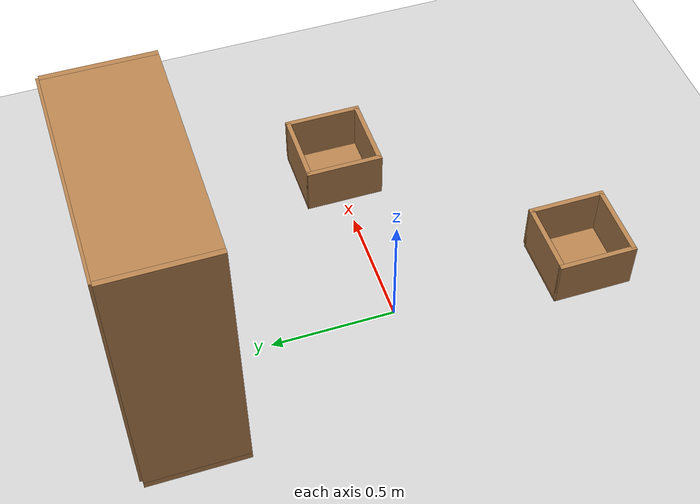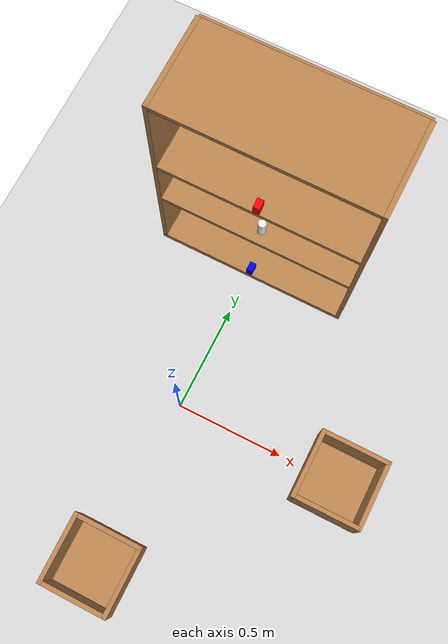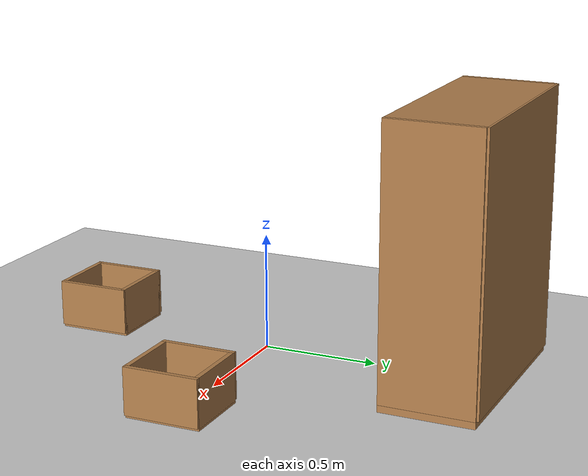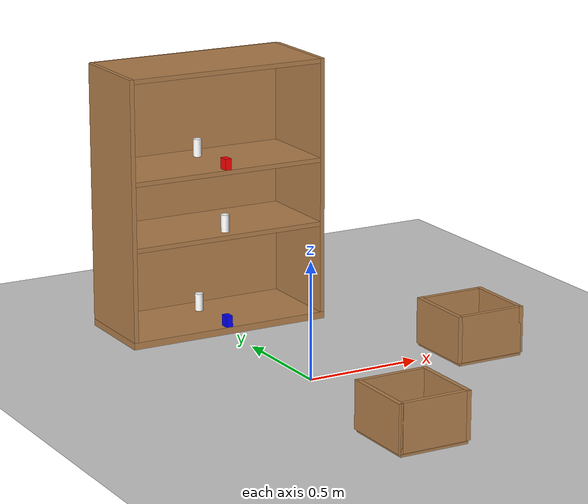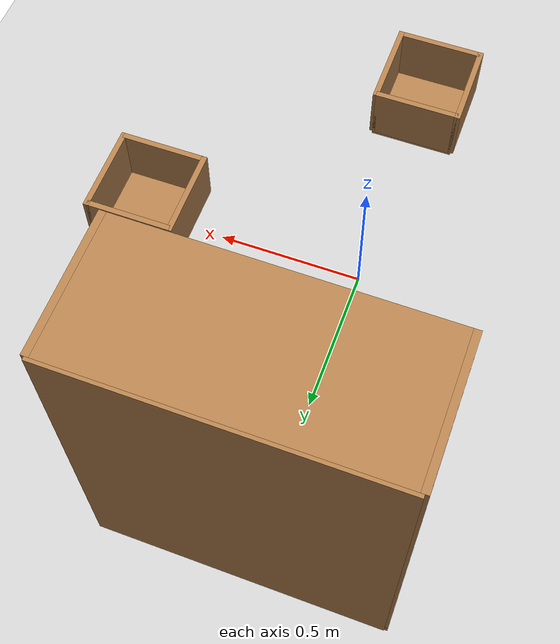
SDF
<sdf version="1.7">
 <world name="default">
  <light name="sun" type="directional">
   <pose>0 0 10 0 -0 0</pose>
   <diffuse>0.8 0.8 0.8 1</diffuse>
   <specular>0.2 0.2 0.2 1</specular>
   <attenuation>
    <range>1000</range>
    <constant>0.9</constant>
    <linear>0.01</linear>
    <quadratic>0.001</quadratic>
   </attenuation>
   <direction>-0.5 0.1 -0.9</direction>
   <spot><inner_angle>0</inner_angle><outer_angle>0</outer_angle><falloff>0</falloff></spot>
  </light>
  <model name="ground_plane">
   <static>1</static>
   <link name="link">
    <collision name="collision">
     <geometry><plane><normal>0 0 1</normal><size>100 100</size></plane></geometry>
     <surface>
      <contact><collide_bitmask>65535</collide_bitmask></contact>
      <friction><ode><mu>100</mu><mu2>50</mu2></ode></friction>
     </surface>
    </collision>
    <visual name="visual">
     <cast_shadows>0</cast_shadows>
     <geometry><plane><normal>0 0 1</normal><size>100 100</size></plane></geometry>
     <material>
      <script><uri>file://media/materials/scripts/gazebo.material</uri><name>Gazebo/Grey</name></script>
     </material>
    </visual>
   </link>
  </model>
  <gravity>0 0 -9.8</gravity>
  <magnetic_field>6e-06 2.3e-05 -4.2e-05</magnetic_field>
  <atmosphere type="adiabatic"/>
  <physics type="ode">
   <max_step_size>0.001</max_step_size>
   <real_time_factor>1</real_time_factor>
   <real_time_update_rate>1000</real_time_update_rate>
  </physics>
  <scene><ambient>0.4 0.4 0.4 1</ambient><background>0.7 0.7 0.7 1</background><shadows>1</shadows></scene>
  <spherical_coordinates>
   <surface_model>EARTH_WGS84</surface_model>
   <latitude_deg>0</latitude_deg>
   <longitude_deg>0</longitude_deg>
   <elevation>0</elevation>
   <heading_deg>0</heading_deg>
  </spherical_coordinates>
  <model name="unit_box_4_1_clone_clone">
   <link name="link">
    <inertial>
     <mass>1</mass>
     <inertia>
      <ixx>0.166667</ixx>
      <ixy>0</ixy>
      <ixz>0</ixz>
      <iyy>0.166667</iyy>
      <iyz>0</iyz>
      <izz>0.166667</izz>
     </inertia>
    </inertial>
    <visual name="visual">
     <geometry><box><size>0.029075 0.043546 0.049099</size></box></geometry>
     <material>
      <script><name>Gazebo/Grey</name><uri>file://media/materials/scripts/gazebo.material</uri></script>
      <shader type="pixel"><normal_map>__default__</normal_map></shader>
      <ambient>0 0 1 1</ambient>
      <diffuse>0.7 0.7 0.7 1</diffuse>
      <specular>0.01 0.01 0.01 1</specular>
      <emissive>0 0 0 1</emissive>
     </material>
    </visual>
    <collision name="collision">
     <geometry><box><size>0.029075 0.043546 0.049099</size></box></geometry>
     <surface>
      <friction>
       <ode><mu>3</mu><mu2>3</mu2><fdir1>0 0 0</fdir1><slip1>0</slip1><slip2>0</slip2></ode>
       <torsional>
        <coefficient>1</coefficient>
        <patch_radius>0</patch_radius>
        <surface_radius>0</surface_radius>
        <use_patch_radius>1</use_patch_radius>
        <ode><slip>0</slip></ode>
       </torsional>
      </friction>
      <bounce><restitution_coefficient>0</restitution_coefficient><threshold>9e+13</threshold></bounce>
      <contact>
       <collide_without_contact>0</collide_without_contact>
       <collide_without_contact_bitmask>1</collide_without_contact_bitmask>
       <collide_bitmask>1</collide_bitmask>
       <ode>
        <soft_cfm>0</soft_cfm>
        <soft_erp>0.2</soft_erp>
        <kp>1e+13</kp>
        <kd>1</kd>
        <max_vel>0.01</max_vel>
        <min_depth>0</min_depth>
       </ode>
       <bullet>
        <split_impulse>1</split_impulse>
        <split_impulse_penetration_threshold>-0.01</split_impulse_penetration_threshold>
        <soft_cfm>0</soft_cfm>
        <soft_erp>0.2</soft_erp>
        <kp>1e+13</kp>
        <kd>1</kd>
       </bullet>
      </contact>
     </surface>
    </collision>
   </link>
   <static>0</static>
   <pose>-0.000511 0.717872 0.054302 3.14159 6e-06 3.13516</pose>
  </model>
  <model name="bookshelf_2_clone_0">
   <link name="link">
    <inertial>
     <mass>1</mass>
     <inertia><ixx>1</ixx><ixy>0</ixy><ixz>0</ixz><iyy>1</iyy><iyz>0</iyz><izz>1</izz></inertia>
    </inertial>
    <pose>0 -0 0.024943 0 -0 0</pose>
    <visual name="visual5">
     <pose>0 -0.0975 0.35 0 -0 0</pose>
     <geometry><box><size>0.3 0.2 0.02</size></box></geometry>
     <material>
      <script><uri>file://media/materials/scripts/gazebo.material</uri><name>Gazebo/Wood</name></script>
      <shader type="pixel"><normal_map>__default__</normal_map></shader>
      <ambient>0 0 1 0</ambient>
      <diffuse>1 1 1 1</diffuse>
      <specular>0.2 0.2 0.2 1</specular>
      <emissive>0 0 0 1</emissive>
     </material>
    </visual>
    <visual name="visual4">
     <pose>0 -0.0975 0.05 0 -0 0</pose>
     <geometry><box><size>0.3 0.2 0.02</size></box></geometry>
     <material>
      <script><uri>file://media/materials/scripts/gazebo.material</uri><name>Gazebo/Wood</name></script>
      <shader type="pixel"><normal_map>__default__</normal_map></shader>
      <ambient>0 0 1 0</ambient>
      <diffuse>1 1 1 1</diffuse>
      <specular>0.2 0.2 0.2 1</specular>
      <emissive>0 0 0 1</emissive>
     </material>
    </visual>
    <visual name="visual3">
     <pose>-0.15 -0.0975 0.2 0 -0 0</pose>
     <geometry><box><size>0.02 0.2 0.32</size></box></geometry>
     <material>
      <script><uri>file://media/materials/scripts/gazebo.material</uri><name>Gazebo/Wood</name></script>
      <shader type="pixel"><normal_map>__default__</normal_map></shader>
      <ambient>0 0 1 0</ambient>
      <diffuse>1 1 1 1</diffuse>
      <specular>0.2 0.2 0.2 1</specular>
      <emissive>0 0 0 1</emissive>
     </material>
    </visual>
    <visual name="visual2">
     <pose>0.15 -0.0975 0.2 0 -0 0</pose>
     <geometry><box><size>0.02 0.2 0.32</size></box></geometry>
     <material>
      <script><uri>file://media/materials/scripts/gazebo.material</uri><name>Gazebo/Wood</name></script>
      <shader type="pixel"><normal_map>__default__</normal_map></shader>
      <ambient>0 0 1 0</ambient>
      <diffuse>1 1 1 1</diffuse>
      <specular>0.2 0.2 0.2 1</specular>
      <emissive>0 0 0 1</emissive>
     </material>
    </visual>
    <visual name="visual1">
     <pose>0 0.01 0.2 0 -0 0</pose>
     <geometry><box><size>0.3 0.01 0.32</size></box></geometry>
     <material>
      <script><uri>file://media/materials/scripts/gazebo.material</uri><name>Gazebo/Wood</name></script>
      <shader type="pixel"><normal_map>__default__</normal_map></shader>
      <ambient>1 1 1 1</ambient>
      <diffuse>1 1 1 1</diffuse>
      <specular>0.2 0.2 0.2 1</specular>
      <emissive>0 0 0 1</emissive>
     </material>
    </visual>
    <collision name="back">
     <pose>0 0.01 0.2 0 -0 0</pose>
     <geometry><box><size>0.3 0.01 0.32</size></box></geometry>
     <surface>
      <friction>
       <ode><mu>1</mu><mu2>1</mu2><fdir1>0 0 0</fdir1><slip1>0</slip1><slip2>0</slip2></ode>
       <torsional>
        <coefficient>1</coefficient>
        <patch_radius>0</patch_radius>
        <surface_radius>0</surface_radius>
        <use_patch_radius>1</use_patch_radius>
        <ode><slip>0</slip></ode>
       </torsional>
      </friction>
      <bounce><restitution_coefficient>0</restitution_coefficient><threshold>1e+06</threshold></bounce>
      <contact>
       <collide_without_contact>0</collide_without_contact>
       <collide_without_contact_bitmask>1</collide_without_contact_bitmask>
       <collide_bitmask>1</collide_bitmask>
       <ode>
        <soft_cfm>0</soft_cfm>
        <soft_erp>0.2</soft_erp>
        <kp>1e+13</kp>
        <kd>1</kd>
        <max_vel>0.01</max_vel>
        <min_depth>0</min_depth>
       </ode>
       <bullet>
        <split_impulse>1</split_impulse>
        <split_impulse_penetration_threshold>-0.01</split_impulse_penetration_threshold>
        <soft_cfm>0</soft_cfm>
        <soft_erp>0.2</soft_erp>
        <kp>1e+13</kp>
        <kd>1</kd>
       </bullet>
      </contact>
     </surface>
    </collision>
    <collision name="right_side">
     <pose>-0.15 -0.0975 0.2 0 -0 0</pose>
     <geometry><box><size>0.02 0.2 0.32</size></box></geometry>
     <surface>
      <friction>
       <ode><mu>1</mu><mu2>1</mu2><fdir1>0 0 0</fdir1><slip1>0</slip1><slip2>0</slip2></ode>
       <torsional>
        <coefficient>1</coefficient>
        <patch_radius>0</patch_radius>
        <surface_radius>0</surface_radius>
        <use_patch_radius>1</use_patch_radius>
        <ode><slip>0</slip></ode>
       </torsional>
      </friction>
      <bounce><restitution_coefficient>0</restitution_coefficient><threshold>1e+06</threshold></bounce>
      <contact>
       <collide_without_contact>0</collide_without_contact>
       <collide_without_contact_bitmask>1</collide_without_contact_bitmask>
       <collide_bitmask>1</collide_bitmask>
       <ode>
        <soft_cfm>0</soft_cfm>
        <soft_erp>0.2</soft_erp>
        <kp>1e+13</kp>
        <kd>1</kd>
        <max_vel>0.01</max_vel>
        <min_depth>0</min_depth>
       </ode>
       <bullet>
        <split_impulse>1</split_impulse>
        <split_impulse_penetration_threshold>-0.01</split_impulse_penetration_threshold>
        <soft_cfm>0</soft_cfm>
        <soft_erp>0.2</soft_erp>
        <kp>1e+13</kp>
        <kd>1</kd>
       </bullet>
      </contact>
     </surface>
    </collision>
    <collision name="bottom">
     <pose>0 -0.0975 0.05 0 -0 0</pose>
     <geometry><box><size>0.3 0.2 0.02</size></box></geometry>
     <surface>
      <friction>
       <ode><mu>500000</mu><mu2>500000</mu2><fdir1>0 0 0</fdir1><slip1>0</slip1><slip2>0</slip2></ode>
       <torsional>
        <coefficient>1</coefficient>
        <patch_radius>0</patch_radius>
        <surface_radius>0</surface_radius>
        <use_patch_radius>1</use_patch_radius>
        <ode><slip>0</slip></ode>
       </torsional>
      </friction>
      <bounce><restitution_coefficient>0</restitution_coefficient><threshold>5e+13</threshold></bounce>
      <contact>
       <collide_without_contact>0</collide_without_contact>
       <collide_without_contact_bitmask>1</collide_without_contact_bitmask>
       <collide_bitmask>1</collide_bitmask>
       <ode>
        <soft_cfm>0</soft_cfm>
        <soft_erp>0.2</soft_erp>
        <kp>1e+13</kp>
        <kd>1</kd>
        <max_vel>0.01</max_vel>
        <min_depth>0</min_depth>
       </ode>
       <bullet>
        <split_impulse>1</split_impulse>
        <split_impulse_penetration_threshold>-0.01</split_impulse_penetration_threshold>
        <soft_cfm>0</soft_cfm>
        <soft_erp>0.2</soft_erp>
        <kp>1e+13</kp>
        <kd>1</kd>
       </bullet>
      </contact>
     </surface>
    </collision>
    <collision name="left_side">
     <pose>0.15 -0.0975 0.2 0 -0 0</pose>
     <geometry><box><size>0.02 0.2 0.32</size></box></geometry>
     <surface>
      <friction>
       <ode><mu>1</mu><mu2>1</mu2><fdir1>0 0 0</fdir1><slip1>0</slip1><slip2>0</slip2></ode>
       <torsional>
        <coefficient>1</coefficient>
        <patch_radius>0</patch_radius>
        <surface_radius>0</surface_radius>
        <use_patch_radius>1</use_patch_radius>
        <ode><slip>0</slip></ode>
       </torsional>
      </friction>
      <bounce><restitution_coefficient>0</restitution_coefficient><threshold>1e+06</threshold></bounce>
      <contact>
       <collide_without_contact>0</collide_without_contact>
       <collide_without_contact_bitmask>1</collide_without_contact_bitmask>
       <collide_bitmask>1</collide_bitmask>
       <ode>
        <soft_cfm>0</soft_cfm>
        <soft_erp>0.2</soft_erp>
        <kp>1e+13</kp>
        <kd>1</kd>
        <max_vel>0.01</max_vel>
        <min_depth>0</min_depth>
       </ode>
       <bullet>
        <split_impulse>1</split_impulse>
        <split_impulse_penetration_threshold>-0.01</split_impulse_penetration_threshold>
        <soft_cfm>0</soft_cfm>
        <soft_erp>0.2</soft_erp>
        <kp>1e+13</kp>
        <kd>1</kd>
       </bullet>
      </contact>
     </surface>
    </collision>
    <collision name="top">
     <pose>0 -0.0975 0.35 0 -0 0</pose>
     <geometry><box><size>0.3 0.2 0.02</size></box></geometry>
     <surface>
      <friction>
       <ode><mu>1</mu><mu2>1</mu2><fdir1>0 0 0</fdir1><slip1>0</slip1><slip2>0</slip2></ode>
       <torsional>
        <coefficient>1</coefficient>
        <patch_radius>0</patch_radius>
        <surface_radius>0</surface_radius>
        <use_patch_radius>1</use_patch_radius>
        <ode><slip>0</slip></ode>
       </torsional>
      </friction>
      <bounce><restitution_coefficient>0</restitution_coefficient><threshold>1e+06</threshold></bounce>
      <contact>
       <collide_without_contact>0</collide_without_contact>
       <collide_without_contact_bitmask>1</collide_without_contact_bitmask>
       <collide_bitmask>1</collide_bitmask>
       <ode>
        <soft_cfm>0</soft_cfm>
        <soft_erp>0.2</soft_erp>
        <kp>1e+13</kp>
        <kd>1</kd>
        <max_vel>0.01</max_vel>
        <min_depth>0</min_depth>
       </ode>
       <bullet>
        <split_impulse>1</split_impulse>
        <split_impulse_penetration_threshold>-0.01</split_impulse_penetration_threshold>
        <soft_cfm>0</soft_cfm>
        <soft_erp>0.2</soft_erp>
        <kp>1e+13</kp>
        <kd>1</kd>
       </bullet>
      </contact>
     </surface>
    </collision>
   </link>
   <static>1</static>
   <pose>-0.00023 -1.00002 0.016209 -1.56733 0 0</pose>
  </model>
  <model name="beer">
   <link name="link">
    <pose>0 0 0.115 0 -0 0</pose>
    <inertial>
     <mass>0.39</mass>
     <inertia><ixx>0.00058</ixx><ixy>0</ixy><ixz>0</ixz><iyy>0.00058</iyy><iyz>0</iyz><izz>0.00019</izz></inertia>
    </inertial>
    <visual name="visual">
     <geometry><cylinder><radius>0.018333</radius><length>0.076666</length></cylinder></geometry>
     <material>
      <script>
       <uri>model://beer/materials/scripts</uri>
       <uri>model://beer/materials/textures</uri>
       <name>Beer/Diffuse</name>
      </script>
      <shader type="pixel"><normal_map>__default__</normal_map></shader>
      <ambient>1 1 1 1</ambient>
      <diffuse>1 1 1 1</diffuse>
      <specular>0 0 0 1</specular>
      <emissive>0 0 0 1</emissive>
     </material>
    </visual>
    <collision name="collision">
     <geometry><cylinder><radius>0.018333</radius><length>0.076666</length></cylinder></geometry>
     <surface>
      <friction>
       <ode><mu>1</mu><mu2>1</mu2><fdir1>0 0 0</fdir1><slip1>0</slip1><slip2>0</slip2></ode>
       <torsional>
        <coefficient>1</coefficient>
        <patch_radius>0</patch_radius>
        <surface_radius>0</surface_radius>
        <use_patch_radius>1</use_patch_radius>
        <ode><slip>0</slip></ode>
       </torsional>
      </friction>
      <bounce><restitution_coefficient>0</restitution_coefficient><threshold>1e+06</threshold></bounce>
      <contact>
       <collide_without_contact>0</collide_without_contact>
       <collide_without_contact_bitmask>1</collide_without_contact_bitmask>
       <collide_bitmask>1</collide_bitmask>
       <ode>
        <soft_cfm>0</soft_cfm>
        <soft_erp>0.2</soft_erp>
        <kp>1e+13</kp>
        <kd>1</kd>
        <max_vel>0.01</max_vel>
        <min_depth>0</min_depth>
       </ode>
       <bullet>
        <split_impulse>1</split_impulse>
        <split_impulse_penetration_threshold>-0.01</split_impulse_penetration_threshold>
        <soft_cfm>0</soft_cfm>
        <soft_erp>0.2</soft_erp>
        <kp>1e+13</kp>
        <kd>1</kd>
       </bullet>
      </contact>
     </surface>
    </collision>
   </link>
   <static>0</static>
   <pose>-0.000474 0.983043 -0.046914 5.2e-05 2.4e-05 -0.001652</pose>
  </model>
  <model name="unit_box_4_1_clone_clone_clone_clone">
   <link name="link">
    <inertial>
     <mass>0.5</mass>
     <inertia>
      <ixx>0.00017946</ixx>
      <ixy>0</ixy>
      <ixz>0</ixz>
      <iyy>0.00013567</iyy>
      <iyz>0</iyz>
      <izz>0.00011423</izz>
     </inertia>
    </inertial>
    <visual name="visual">
     <geometry><box><size>0.029075 0.043546 0.049099</size></box></geometry>
     <material>
      <script><name>Gazebo/Grey</name><uri>file://media/materials/scripts/gazebo.material</uri></script>
      <shader type="pixel"><normal_map>__default__</normal_map></shader>
      <ambient>1 0 0 1</ambient>
      <diffuse>0.7 0.7 0.7 1</diffuse>
      <specular>0.01 0.01 0.01 1</specular>
      <emissive>0 0 0 1</emissive>
     </material>
    </visual>
    <collision name="collision">
     <geometry><box><size>0.029075 0.043546 0.049099</size></box></geometry>
     <surface>
      <friction>
       <ode><mu>3</mu><mu2>3</mu2><fdir1>0 0 0</fdir1><slip1>0</slip1><slip2>0</slip2></ode>
       <torsional>
        <coefficient>1</coefficient>
        <patch_radius>0</patch_radius>
        <surface_radius>0</surface_radius>
        <use_patch_radius>1</use_patch_radius>
        <ode><slip>0</slip></ode>
       </torsional>
      </friction>
      <bounce><restitution_coefficient>0</restitution_coefficient><threshold>9e+13</threshold></bounce>
      <contact>
       <collide_without_contact>0</collide_without_contact>
       <collide_without_contact_bitmask>1</collide_without_contact_bitmask>
       <collide_bitmask>1</collide_bitmask>
       <ode>
        <soft_cfm>0</soft_cfm>
        <soft_erp>0.2</soft_erp>
        <kp>1e+13</kp>
        <kd>1</kd>
        <max_vel>0.01</max_vel>
        <min_depth>0</min_depth>
       </ode>
       <bullet>
        <split_impulse>1</split_impulse>
        <split_impulse_penetration_threshold>-0.01</split_impulse_penetration_threshold>
        <soft_cfm>0</soft_cfm>
        <soft_erp>0.2</soft_erp>
        <kp>1e+13</kp>
        <kd>1</kd>
       </bullet>
      </contact>
     </surface>
    </collision>
   </link>
   <static>0</static>
   <pose>0.000208 0.717959 0.7493 0 -3e-05 0.011957</pose>
  </model>
  <model name="bookshelf_2">
   <link name="link">
    <inertial>
     <mass>1</mass>
     <inertia><ixx>1</ixx><ixy>0</ixy><ixz>0</ixz><iyy>1</iyy><iyz>0</iyz><izz>1</izz></inertia>
    </inertial>
    <pose>0 0 0.024943 0 -0 0</pose>
    <visual name="visual2">
     <pose>0.45 -0.195 0.615 0 -0 0</pose>
     <geometry><box><size>0.02 0.4 1.13</size></box></geometry>
     <material>
      <script><uri>file://media/materials/scripts/gazebo.material</uri><name>Gazebo/Wood</name></script>
      <shader type="pixel"><normal_map>__default__</normal_map></shader>
      <ambient>1 1 1 1</ambient>
      <diffuse>1 1 1 1</diffuse>
      <specular>0.2 0.2 0.2 1</specular>
      <emissive>0 0 0 1</emissive>
     </material>
    </visual>
    <visual name="visual7">
     <pose>0 -0.195 0.735 0 -0 0</pose>
     <geometry><box><size>0.88 0.4 0.02</size></box></geometry>
     <material>
      <script><uri>file://media/materials/scripts/gazebo.material</uri><name>Gazebo/Wood</name></script>
      <shader type="pixel"><normal_map>__default__</normal_map></shader>
      <ambient>1 1 1 1</ambient>
      <diffuse>1 1 1 1</diffuse>
      <specular>0.2 0.2 0.2 1</specular>
      <emissive>0 0 0 1</emissive>
     </material>
    </visual>
    <visual name="visual1">
     <pose>0 -0.4 0.615 0 -0 0</pose>
     <geometry><box><size>0.9 0.01 1.13</size></box></geometry>
     <material>
      <script><uri>file://media/materials/scripts/gazebo.material</uri><name>Gazebo/Wood</name></script>
      <shader type="pixel"><normal_map>__default__</normal_map></shader>
      <ambient>1 1 1 1</ambient>
      <diffuse>1 1 1 1</diffuse>
      <specular>0.2 0.2 0.2 1</specular>
      <emissive>0 0 0 1</emissive>
     </material>
    </visual>
    <visual name="visual6">
     <pose>0 -0.195 0.45 0 -0 0</pose>
     <geometry><box><size>0.88 0.4 0.02</size></box></geometry>
     <material>
      <script><uri>file://media/materials/scripts/gazebo.material</uri><name>Gazebo/Wood</name></script>
      <shader type="pixel"><normal_map>__default__</normal_map></shader>
      <ambient>1 1 1 1</ambient>
      <diffuse>1 1 1 1</diffuse>
      <specular>0.2 0.2 0.2 1</specular>
      <emissive>0 0 0 1</emissive>
     </material>
    </visual>
    <visual name="visual3">
     <pose>-0.45 -0.195 0.615 0 -0 0</pose>
     <geometry><box><size>0.02 0.4 1.13</size></box></geometry>
     <material>
      <script><uri>file://media/materials/scripts/gazebo.material</uri><name>Gazebo/Wood</name></script>
      <shader type="pixel"><normal_map>__default__</normal_map></shader>
      <ambient>1 1 1 1</ambient>
      <diffuse>1 1 1 1</diffuse>
      <specular>0.2 0.2 0.2 1</specular>
      <emissive>0 0 0 1</emissive>
     </material>
    </visual>
    <visual name="visual5">
     <pose>0 -0.195 1.17 0 -0 0</pose>
     <geometry><box><size>0.88 0.4 0.02</size></box></geometry>
     <material>
      <script><uri>file://media/materials/scripts/gazebo.material</uri><name>Gazebo/Wood</name></script>
      <shader type="pixel"><normal_map>__default__</normal_map></shader>
      <ambient>1 1 1 1</ambient>
      <diffuse>1 1 1 1</diffuse>
      <specular>0.2 0.2 0.2 1</specular>
      <emissive>0 0 0 1</emissive>
     </material>
    </visual>
    <visual name="visual4">
     <pose>0 -0.195 0.035 0 -0 0</pose>
     <geometry><box><size>0.92 0.4 0.03</size></box></geometry>
     <material>
      <script><uri>file://media/materials/scripts/gazebo.material</uri><name>Gazebo/Wood</name></script>
      <shader type="pixel"><normal_map>__default__</normal_map></shader>
      <ambient>1 1 1 1</ambient>
      <diffuse>1 1 1 1</diffuse>
      <specular>0.2 0.2 0.2 1</specular>
      <emissive>0 0 0 1</emissive>
     </material>
    </visual>
    <collision name="low_shelf">
     <pose>0 -0.195 0.45 0 -0 0</pose>
     <geometry><box><size>0.88 0.4 0.02</size></box></geometry>
     <surface>
      <friction>
       <ode><mu>1</mu><mu2>1</mu2><fdir1>0 0 0</fdir1><slip1>0</slip1><slip2>0</slip2></ode>
       <torsional>
        <coefficient>1</coefficient>
        <patch_radius>0</patch_radius>
        <surface_radius>0</surface_radius>
        <use_patch_radius>1</use_patch_radius>
        <ode><slip>0</slip></ode>
       </torsional>
      </friction>
      <bounce><restitution_coefficient>0</restitution_coefficient><threshold>1e+06</threshold></bounce>
      <contact>
       <collide_without_contact>0</collide_without_contact>
       <collide_without_contact_bitmask>1</collide_without_contact_bitmask>
       <collide_bitmask>1</collide_bitmask>
       <ode>
        <soft_cfm>0</soft_cfm>
        <soft_erp>0.2</soft_erp>
        <kp>1e+13</kp>
        <kd>1</kd>
        <max_vel>0.01</max_vel>
        <min_depth>0</min_depth>
       </ode>
       <bullet>
        <split_impulse>1</split_impulse>
        <split_impulse_penetration_threshold>-0.01</split_impulse_penetration_threshold>
        <soft_cfm>0</soft_cfm>
        <soft_erp>0.2</soft_erp>
        <kp>1e+13</kp>
        <kd>1</kd>
       </bullet>
      </contact>
     </surface>
    </collision>
    <collision name="right_side">
     <pose>-0.45 -0.195 0.6 0 -0 0</pose>
     <geometry><box><size>0.02 0.4 1.1</size></box></geometry>
     <surface>
      <friction>
       <ode><mu>1</mu><mu2>1</mu2><fdir1>0 0 0</fdir1><slip1>0</slip1><slip2>0</slip2></ode>
       <torsional>
        <coefficient>1</coefficient>
        <patch_radius>0</patch_radius>
        <surface_radius>0</surface_radius>
        <use_patch_radius>1</use_patch_radius>
        <ode><slip>0</slip></ode>
       </torsional>
      </friction>
      <bounce><restitution_coefficient>0</restitution_coefficient><threshold>1e+06</threshold></bounce>
      <contact>
       <collide_without_contact>0</collide_without_contact>
       <collide_without_contact_bitmask>1</collide_without_contact_bitmask>
       <collide_bitmask>1</collide_bitmask>
       <ode>
        <soft_cfm>0</soft_cfm>
        <soft_erp>0.2</soft_erp>
        <kp>1e+13</kp>
        <kd>1</kd>
        <max_vel>0.01</max_vel>
        <min_depth>0</min_depth>
       </ode>
       <bullet>
        <split_impulse>1</split_impulse>
        <split_impulse_penetration_threshold>-0.01</split_impulse_penetration_threshold>
        <soft_cfm>0</soft_cfm>
        <soft_erp>0.2</soft_erp>
        <kp>1e+13</kp>
        <kd>1</kd>
       </bullet>
      </contact>
     </surface>
    </collision>
    <collision name="left_side">
     <pose>0.45 -0.195 0.6 0 -0 0</pose>
     <geometry><box><size>0.02 0.4 1.1</size></box></geometry>
     <surface>
      <friction>
       <ode><mu>1</mu><mu2>1</mu2><fdir1>0 0 0</fdir1><slip1>0</slip1><slip2>0</slip2></ode>
       <torsional>
        <coefficient>1</coefficient>
        <patch_radius>0</patch_radius>
        <surface_radius>0</surface_radius>
        <use_patch_radius>1</use_patch_radius>
        <ode><slip>0</slip></ode>
       </torsional>
      </friction>
      <bounce><restitution_coefficient>0</restitution_coefficient><threshold>1e+06</threshold></bounce>
      <contact>
       <collide_without_contact>0</collide_without_contact>
       <collide_without_contact_bitmask>1</collide_without_contact_bitmask>
       <collide_bitmask>1</collide_bitmask>
       <ode>
        <soft_cfm>0</soft_cfm>
        <soft_erp>0.2</soft_erp>
        <kp>1e+13</kp>
        <kd>1</kd>
        <max_vel>0.01</max_vel>
        <min_depth>0</min_depth>
       </ode>
       <bullet>
        <split_impulse>1</split_impulse>
        <split_impulse_penetration_threshold>-0.01</split_impulse_penetration_threshold>
        <soft_cfm>0</soft_cfm>
        <soft_erp>0.2</soft_erp>
        <kp>1e+13</kp>
        <kd>1</kd>
       </bullet>
      </contact>
     </surface>
    </collision>
    <collision name="bottom">
     <pose>0 -0.195 0.035 0 -0 0</pose>
     <geometry><box><size>0.92 0.4 0.03</size></box></geometry>
     <surface>
      <friction>
       <ode><mu>1</mu><mu2>1</mu2><fdir1>0 0 0</fdir1><slip1>0</slip1><slip2>0</slip2></ode>
       <torsional>
        <coefficient>1</coefficient>
        <patch_radius>0</patch_radius>
        <surface_radius>0</surface_radius>
        <use_patch_radius>1</use_patch_radius>
        <ode><slip>0</slip></ode>
       </torsional>
      </friction>
      <bounce><restitution_coefficient>0</restitution_coefficient><threshold>1e+06</threshold></bounce>
      <contact>
       <collide_without_contact>0</collide_without_contact>
       <collide_without_contact_bitmask>1</collide_without_contact_bitmask>
       <collide_bitmask>1</collide_bitmask>
       <ode>
        <soft_cfm>0</soft_cfm>
        <soft_erp>0.2</soft_erp>
        <kp>1e+13</kp>
        <kd>1</kd>
        <max_vel>0.01</max_vel>
        <min_depth>0</min_depth>
       </ode>
       <bullet>
        <split_impulse>1</split_impulse>
        <split_impulse_penetration_threshold>-0.01</split_impulse_penetration_threshold>
        <soft_cfm>0</soft_cfm>
        <soft_erp>0.2</soft_erp>
        <kp>1e+13</kp>
        <kd>1</kd>
       </bullet>
      </contact>
     </surface>
    </collision>
    <collision name="back">
     <pose>0 -0.4 0.615 0 -0 0</pose>
     <geometry><box><size>0.9 0.01 1.13</size></box></geometry>
     <surface>
      <friction>
       <ode><mu>1</mu><mu2>1</mu2><fdir1>0 0 0</fdir1><slip1>0</slip1><slip2>0</slip2></ode>
       <torsional>
        <coefficient>1</coefficient>
        <patch_radius>0</patch_radius>
        <surface_radius>0</surface_radius>
        <use_patch_radius>1</use_patch_radius>
        <ode><slip>0</slip></ode>
       </torsional>
      </friction>
      <bounce><restitution_coefficient>0</restitution_coefficient><threshold>1e+06</threshold></bounce>
      <contact>
       <collide_without_contact>0</collide_without_contact>
       <collide_without_contact_bitmask>1</collide_without_contact_bitmask>
       <collide_bitmask>1</collide_bitmask>
       <ode>
        <soft_cfm>0</soft_cfm>
        <soft_erp>0.2</soft_erp>
        <kp>1e+13</kp>
        <kd>1</kd>
        <max_vel>0.01</max_vel>
        <min_depth>0</min_depth>
       </ode>
       <bullet>
        <split_impulse>1</split_impulse>
        <split_impulse_penetration_threshold>-0.01</split_impulse_penetration_threshold>
        <soft_cfm>0</soft_cfm>
        <soft_erp>0.2</soft_erp>
        <kp>1e+13</kp>
        <kd>1</kd>
       </bullet>
      </contact>
     </surface>
    </collision>
    <collision name="high_shelf">
     <pose>0 -0.195 0.735 0 -0 0</pose>
     <geometry><box><size>0.88 0.4 0.02</size></box></geometry>
     <surface>
      <friction>
       <ode><mu>1</mu><mu2>1</mu2><fdir1>0 0 0</fdir1><slip1>0</slip1><slip2>0</slip2></ode>
       <torsional>
        <coefficient>1</coefficient>
        <patch_radius>0</patch_radius>
        <surface_radius>0</surface_radius>
        <use_patch_radius>1</use_patch_radius>
        <ode><slip>0</slip></ode>
       </torsional>
      </friction>
      <bounce><restitution_coefficient>0</restitution_coefficient><threshold>1e+06</threshold></bounce>
      <contact>
       <collide_without_contact>0</collide_without_contact>
       <collide_without_contact_bitmask>1</collide_without_contact_bitmask>
       <collide_bitmask>1</collide_bitmask>
       <ode>
        <soft_cfm>0</soft_cfm>
        <soft_erp>0.2</soft_erp>
        <kp>1e+13</kp>
        <kd>1</kd>
        <max_vel>0.01</max_vel>
        <min_depth>0</min_depth>
       </ode>
       <bullet>
        <split_impulse>1</split_impulse>
        <split_impulse_penetration_threshold>-0.01</split_impulse_penetration_threshold>
        <soft_cfm>0</soft_cfm>
        <soft_erp>0.2</soft_erp>
        <kp>1e+13</kp>
        <kd>1</kd>
       </bullet>
      </contact>
     </surface>
    </collision>
    <collision name="top">
     <pose>0 -0.195 1.17 0 -0 0</pose>
     <geometry><box><size>0.88 0.4 0.02</size></box></geometry>
     <surface>
      <friction>
       <ode><mu>1</mu><mu2>1</mu2><fdir1>0 0 0</fdir1><slip1>0</slip1><slip2>0</slip2></ode>
       <torsional>
        <coefficient>1</coefficient>
        <patch_radius>0</patch_radius>
        <surface_radius>0</surface_radius>
        <use_patch_radius>1</use_patch_radius>
        <ode><slip>0</slip></ode>
       </torsional>
      </friction>
      <bounce><restitution_coefficient>0</restitution_coefficient><threshold>1e+06</threshold></bounce>
      <contact>
       <collide_without_contact>0</collide_without_contact>
       <collide_without_contact_bitmask>1</collide_without_contact_bitmask>
       <collide_bitmask>1</collide_bitmask>
       <ode>
        <soft_cfm>0</soft_cfm>
        <soft_erp>0.2</soft_erp>
        <kp>1e+13</kp>
        <kd>1</kd>
        <max_vel>0.01</max_vel>
        <min_depth>0</min_depth>
       </ode>
       <bullet>
        <split_impulse>1</split_impulse>
        <split_impulse_penetration_threshold>-0.01</split_impulse_penetration_threshold>
        <soft_cfm>0</soft_cfm>
        <soft_erp>0.2</soft_erp>
        <kp>1e+13</kp>
        <kd>1</kd>
       </bullet>
      </contact>
     </surface>
    </collision>
   </link>
   <static>1</static>
   <pose>0.006078 0.701318 -0.045191 0 -0 3.13762</pose>
  </model>
  <model name="bookshelf_2_clone_0_clone">
   <link name="link">
    <inertial>
     <mass>1</mass>
     <inertia><ixx>1</ixx><ixy>0</ixy><ixz>0</ixz><iyy>1</iyy><iyz>0</iyz><izz>1</izz></inertia>
    </inertial>
    <pose>0 0 0.024943 0 -0 0</pose>
    <visual name="visual4">
     <pose>0 -0.0975 0.05 0 -0 0</pose>
     <geometry><box><size>0.3 0.2 0.02</size></box></geometry>
     <material>
      <script><uri>file://media/materials/scripts/gazebo.material</uri><name>Gazebo/Wood</name></script>
      <shader type="pixel"><normal_map>__default__</normal_map></shader>
      <ambient>1 0 0 0</ambient>
      <diffuse>1 1 1 1</diffuse>
      <specular>0.2 0.2 0.2 1</specular>
      <emissive>0 0 0 1</emissive>
     </material>
    </visual>
    <visual name="visual3">
     <pose>-0.15 -0.0975 0.2 0 -0 0</pose>
     <geometry><box><size>0.02 0.2 0.32</size></box></geometry>
     <material>
      <script><uri>file://media/materials/scripts/gazebo.material</uri><name>Gazebo/Wood</name></script>
      <shader type="pixel"><normal_map>__default__</normal_map></shader>
      <ambient>1 0 0 0</ambient>
      <diffuse>1 1 1 1</diffuse>
      <specular>0.2 0.2 0.2 1</specular>
      <emissive>0 0 0 1</emissive>
     </material>
    </visual>
    <visual name="visual2">
     <pose>0.15 -0.0975 0.2 0 -0 0</pose>
     <geometry><box><size>0.02 0.2 0.32</size></box></geometry>
     <material>
      <script><uri>file://media/materials/scripts/gazebo.material</uri><name>Gazebo/Wood</name></script>
      <shader type="pixel"><normal_map>__default__</normal_map></shader>
      <ambient>1 0 0 0</ambient>
      <diffuse>1 1 1 1</diffuse>
      <specular>0.2 0.2 0.2 1</specular>
      <emissive>0 0 0 1</emissive>
     </material>
    </visual>
    <visual name="visual1">
     <pose>0 0.01 0.2 0 -0 0</pose>
     <geometry><box><size>0.3 0.01 0.32</size></box></geometry>
     <material>
      <script><uri>file://media/materials/scripts/gazebo.material</uri><name>Gazebo/Wood</name></script>
      <shader type="pixel"><normal_map>__default__</normal_map></shader>
      <ambient>1 1 1 1</ambient>
      <diffuse>1 1 1 1</diffuse>
      <specular>0.2 0.2 0.2 1</specular>
      <emissive>0 0 0 1</emissive>
     </material>
    </visual>
    <visual name="visual5">
     <pose>0 -0.0975 0.35 0 -0 0</pose>
     <geometry><box><size>0.3 0.2 0.02</size></box></geometry>
     <material>
      <script><uri>file://media/materials/scripts/gazebo.material</uri><name>Gazebo/Wood</name></script>
      <shader type="pixel"><normal_map>__default__</normal_map></shader>
      <ambient>1 0 0 0</ambient>
      <diffuse>1 1 1 1</diffuse>
      <specular>0.2 0.2 0.2 1</specular>
      <emissive>0 0 0 1</emissive>
     </material>
    </visual>
    <collision name="back">
     <pose>0 0.01 0.2 0 -0 0</pose>
     <geometry><box><size>0.3 0.01 0.32</size></box></geometry>
     <surface>
      <friction>
       <ode><mu>1</mu><mu2>1</mu2><fdir1>0 0 0</fdir1><slip1>0</slip1><slip2>0</slip2></ode>
       <torsional>
        <coefficient>1</coefficient>
        <patch_radius>0</patch_radius>
        <surface_radius>0</surface_radius>
        <use_patch_radius>1</use_patch_radius>
        <ode><slip>0</slip></ode>
       </torsional>
      </friction>
      <bounce><restitution_coefficient>0</restitution_coefficient><threshold>1e+06</threshold></bounce>
      <contact>
       <collide_without_contact>0</collide_without_contact>
       <collide_without_contact_bitmask>1</collide_without_contact_bitmask>
       <collide_bitmask>1</collide_bitmask>
       <ode>
        <soft_cfm>0</soft_cfm>
        <soft_erp>0.2</soft_erp>
        <kp>1e+13</kp>
        <kd>1</kd>
        <max_vel>0.01</max_vel>
        <min_depth>0</min_depth>
       </ode>
       <bullet>
        <split_impulse>1</split_impulse>
        <split_impulse_penetration_threshold>-0.01</split_impulse_penetration_threshold>
        <soft_cfm>0</soft_cfm>
        <soft_erp>0.2</soft_erp>
        <kp>1e+13</kp>
        <kd>1</kd>
       </bullet>
      </contact>
     </surface>
    </collision>
    <collision name="right_side">
     <pose>-0.15 -0.0975 0.2 0 -0 0</pose>
     <geometry><box><size>0.02 0.2 0.32</size></box></geometry>
     <surface>
      <friction>
       <ode><mu>1</mu><mu2>1</mu2><fdir1>0 0 0</fdir1><slip1>0</slip1><slip2>0</slip2></ode>
       <torsional>
        <coefficient>1</coefficient>
        <patch_radius>0</patch_radius>
        <surface_radius>0</surface_radius>
        <use_patch_radius>1</use_patch_radius>
        <ode><slip>0</slip></ode>
       </torsional>
      </friction>
      <bounce><restitution_coefficient>0</restitution_coefficient><threshold>1e+06</threshold></bounce>
      <contact>
       <collide_without_contact>0</collide_without_contact>
       <collide_without_contact_bitmask>1</collide_without_contact_bitmask>
       <collide_bitmask>1</collide_bitmask>
       <ode>
        <soft_cfm>0</soft_cfm>
        <soft_erp>0.2</soft_erp>
        <kp>1e+13</kp>
        <kd>1</kd>
        <max_vel>0.01</max_vel>
        <min_depth>0</min_depth>
       </ode>
       <bullet>
        <split_impulse>1</split_impulse>
        <split_impulse_penetration_threshold>-0.01</split_impulse_penetration_threshold>
        <soft_cfm>0</soft_cfm>
        <soft_erp>0.2</soft_erp>
        <kp>1e+13</kp>
        <kd>1</kd>
       </bullet>
      </contact>
     </surface>
    </collision>
    <collision name="left_side">
     <pose>0.15 -0.0975 0.2 0 -0 0</pose>
     <geometry><box><size>0.02 0.2 0.32</size></box></geometry>
     <surface>
      <friction>
       <ode><mu>1</mu><mu2>1</mu2><fdir1>0 0 0</fdir1><slip1>0</slip1><slip2>0</slip2></ode>
       <torsional>
        <coefficient>1</coefficient>
        <patch_radius>0</patch_radius>
        <surface_radius>0</surface_radius>
        <use_patch_radius>1</use_patch_radius>
        <ode><slip>0</slip></ode>
       </torsional>
      </friction>
      <bounce><restitution_coefficient>0</restitution_coefficient><threshold>1e+06</threshold></bounce>
      <contact>
       <collide_without_contact>0</collide_without_contact>
       <collide_without_contact_bitmask>1</collide_without_contact_bitmask>
       <collide_bitmask>1</collide_bitmask>
       <ode>
        <soft_cfm>0</soft_cfm>
        <soft_erp>0.2</soft_erp>
        <kp>1e+13</kp>
        <kd>1</kd>
        <max_vel>0.01</max_vel>
        <min_depth>0</min_depth>
       </ode>
       <bullet>
        <split_impulse>1</split_impulse>
        <split_impulse_penetration_threshold>-0.01</split_impulse_penetration_threshold>
        <soft_cfm>0</soft_cfm>
        <soft_erp>0.2</soft_erp>
        <kp>1e+13</kp>
        <kd>1</kd>
       </bullet>
      </contact>
     </surface>
    </collision>
    <collision name="bottom">
     <pose>0 -0.0975 0.05 0 -0 0</pose>
     <geometry><box><size>0.3 0.2 0.02</size></box></geometry>
     <surface>
      <friction>
       <ode><mu>500000</mu><mu2>500000</mu2><fdir1>0 0 0</fdir1><slip1>0</slip1><slip2>0</slip2></ode>
       <torsional>
        <coefficient>1</coefficient>
        <patch_radius>0</patch_radius>
        <surface_radius>0</surface_radius>
        <use_patch_radius>1</use_patch_radius>
        <ode><slip>0</slip></ode>
       </torsional>
      </friction>
      <bounce><restitution_coefficient>0</restitution_coefficient><threshold>5e+13</threshold></bounce>
      <contact>
       <collide_without_contact>0</collide_without_contact>
       <collide_without_contact_bitmask>1</collide_without_contact_bitmask>
       <collide_bitmask>1</collide_bitmask>
       <ode>
        <soft_cfm>0</soft_cfm>
        <soft_erp>0.2</soft_erp>
        <kp>1e+13</kp>
        <kd>1</kd>
        <max_vel>0.01</max_vel>
        <min_depth>0</min_depth>
       </ode>
       <bullet>
        <split_impulse>1</split_impulse>
        <split_impulse_penetration_threshold>-0.01</split_impulse_penetration_threshold>
        <soft_cfm>0</soft_cfm>
        <soft_erp>0.2</soft_erp>
        <kp>1e+13</kp>
        <kd>1</kd>
       </bullet>
      </contact>
     </surface>
    </collision>
    <collision name="top">
     <pose>0 -0.0975 0.35 0 -0 0</pose>
     <geometry><box><size>0.3 0.2 0.02</size></box></geometry>
     <surface>
      <friction>
       <ode><mu>1</mu><mu2>1</mu2><fdir1>0 0 0</fdir1><slip1>0</slip1><slip2>0</slip2></ode>
       <torsional>
        <coefficient>1</coefficient>
        <patch_radius>0</patch_radius>
        <surface_radius>0</surface_radius>
        <use_patch_radius>1</use_patch_radius>
        <ode><slip>0</slip></ode>
       </torsional>
      </friction>
      <bounce><restitution_coefficient>0</restitution_coefficient><threshold>1e+06</threshold></bounce>
      <contact>
       <collide_without_contact>0</collide_without_contact>
       <collide_without_contact_bitmask>1</collide_without_contact_bitmask>
       <collide_bitmask>1</collide_bitmask>
       <ode>
        <soft_cfm>0</soft_cfm>
        <soft_erp>0.2</soft_erp>
        <kp>1e+13</kp>
        <kd>1</kd>
        <max_vel>0.01</max_vel>
        <min_depth>0</min_depth>
       </ode>
       <bullet>
        <split_impulse>1</split_impulse>
        <split_impulse_penetration_threshold>-0.01</split_impulse_penetration_threshold>
        <soft_cfm>0</soft_cfm>
        <soft_erp>0.2</soft_erp>
        <kp>1e+13</kp>
        <kd>1</kd>
       </bullet>
      </contact>
     </surface>
    </collision>
   </link>
   <static>1</static>
   <pose>0.767784 -0.224234 0.016165 -1.56733 0 0</pose>
  </model>
  <model name="beer_clone">
   <link name="link">
    <pose>0 0 0.115 0 -0 0</pose>
    <inertial>
     <mass>0.39</mass>
     <inertia><ixx>0.00058</ixx><ixy>0</ixy><ixz>0</ixz><iyy>0.00058</iyy><iyz>0</iyz><izz>0.00019</izz></inertia>
    </inertial>
    <visual name="visual">
     <geometry><cylinder><radius>0.018333</radius><length>0.076666</length></cylinder></geometry>
     <material>
      <script>
       <uri>model://beer/materials/scripts</uri>
       <uri>model://beer/materials/textures</uri>
       <name>Beer/Diffuse</name>
      </script>
      <shader type="pixel"><normal_map>__default__</normal_map></shader>
      <ambient>1 1 1 1</ambient>
      <diffuse>1 1 1 1</diffuse>
      <specular>0 0 0 1</specular>
      <emissive>0 0 0 1</emissive>
     </material>
    </visual>
    <collision name="collision">
     <geometry><cylinder><radius>0.018333</radius><length>0.076666</length></cylinder></geometry>
     <surface>
      <friction>
       <ode><mu>1</mu><mu2>1</mu2><fdir1>0 0 0</fdir1><slip1>0</slip1><slip2>0</slip2></ode>
       <torsional>
        <coefficient>1</coefficient>
        <patch_radius>0</patch_radius>
        <surface_radius>0</surface_radius>
        <use_patch_radius>1</use_patch_radius>
        <ode><slip>0</slip></ode>
       </torsional>
      </friction>
      <bounce><restitution_coefficient>0</restitution_coefficient><threshold>1e+06</threshold></bounce>
      <contact>
       <collide_without_contact>0</collide_without_contact>
       <collide_without_contact_bitmask>1</collide_without_contact_bitmask>
       <collide_bitmask>1</collide_bitmask>
       <ode>
        <soft_cfm>0</soft_cfm>
        <soft_erp>0.2</soft_erp>
        <kp>1e+13</kp>
        <kd>1</kd>
        <max_vel>0.01</max_vel>
        <min_depth>0</min_depth>
       </ode>
       <bullet>
        <split_impulse>1</split_impulse>
        <split_impulse_penetration_threshold>-0.01</split_impulse_penetration_threshold>
        <soft_cfm>0</soft_cfm>
        <soft_erp>0.2</soft_erp>
        <kp>1e+13</kp>
        <kd>1</kd>
       </bullet>
      </contact>
     </surface>
    </collision>
   </link>
   <static>0</static>
   <pose>0.012469 0.75637 0.363086 2.9e-05 -5e-06 0.000378</pose>
  </model>
  <model name="beer_clone_0">
   <link name="link">
    <pose>0 0 0.115 0 -0 0</pose>
    <inertial>
     <mass>0.39</mass>
     <inertia><ixx>0.00058</ixx><ixy>0</ixy><ixz>0</ixz><iyy>0.00058</iyy><iyz>0</iyz><izz>0.00019</izz></inertia>
    </inertial>
    <visual name="visual">
     <geometry><cylinder><radius>0.018333</radius><length>0.076666</length></cylinder></geometry>
     <material>
      <script>
       <uri>model://beer/materials/scripts</uri>
       <uri>model://beer/materials/textures</uri>
       <name>Beer/Diffuse</name>
      </script>
      <shader type="pixel"><normal_map>__default__</normal_map></shader>
      <ambient>1 1 1 1</ambient>
      <diffuse>1 1 1 1</diffuse>
      <specular>0 0 0 1</specular>
      <emissive>0 0 0 1</emissive>
     </material>
    </visual>
    <collision name="collision">
     <geometry><cylinder><radius>0.018333</radius><length>0.076666</length></cylinder></geometry>
     <surface>
      <friction>
       <ode><mu>1</mu><mu2>1</mu2><fdir1>0 0 0</fdir1><slip1>0</slip1><slip2>0</slip2></ode>
       <torsional>
        <coefficient>1</coefficient>
        <patch_radius>0</patch_radius>
        <surface_radius>0</surface_radius>
        <use_patch_radius>1</use_patch_radius>
        <ode><slip>0</slip></ode>
       </torsional>
      </friction>
      <bounce><restitution_coefficient>0</restitution_coefficient><threshold>1e+06</threshold></bounce>
      <contact>
       <collide_without_contact>0</collide_without_contact>
       <collide_without_contact_bitmask>1</collide_without_contact_bitmask>
       <collide_bitmask>1</collide_bitmask>
       <ode>
        <soft_cfm>0</soft_cfm>
        <soft_erp>0.2</soft_erp>
        <kp>1e+13</kp>
        <kd>1</kd>
        <max_vel>0.01</max_vel>
        <min_depth>0</min_depth>
       </ode>
       <bullet>
        <split_impulse>1</split_impulse>
        <split_impulse_penetration_threshold>-0.01</split_impulse_penetration_threshold>
        <soft_cfm>0</soft_cfm>
        <soft_erp>0.2</soft_erp>
        <kp>1e+13</kp>
        <kd>1</kd>
       </bullet>
      </contact>
     </surface>
    </collision>
   </link>
   <static>0</static>
   <pose>0.001031 0.984242 0.648086 3.6e-05 2.7e-05 -0.002085</pose>
  </model>
 </world>
</sdf>
